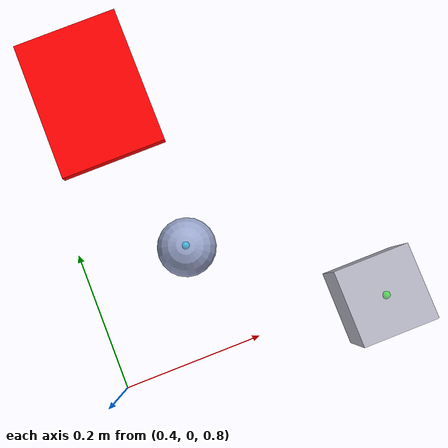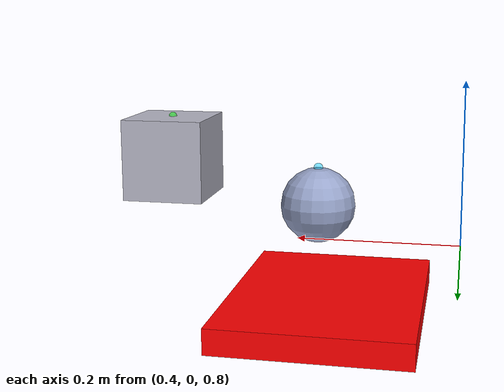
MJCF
<mujoco>

  <asset>
    <material name="metal_box_mat"
              rgba="0.72 0.72 0.78 1"
              specular="0.6"
              shininess="0.4"/>
    <material name="metal_sphere_mat"
              rgba="0.60 0.65 0.80 1"
              specular="0.7"
              shininess="0.5"/>
    <material name="target_zone_mat"
              rgba="1.0 0.0 0.0 1"
              specular="0.05"
              shininess="0.1"/>
  </asset>

  <worldbody>

    <!--
      ── Metal box (Phase 5, Task 5.1) ──────────────────────────────────
      freejoint → box can move under physics.
      DEFAULT pos overridden by randomize_scene() before first mj_step.
    -->
    <!-- Box default: directly under EM snap-pose position (X=0.76, Y=0) on table surface -->
    <body name="metal_box" pos="0.76 0 0.90">
      <freejoint name="box_freejoint"/>

      <geom name="box_geom"
            type="box"
            size="0.05 0.05 0.05"
            mass="0.5"
            material="metal_box_mat"
            friction="0.8 0.005 0.0001"
            condim="6"
            contype="4" conaffinity="6"/>

      <site name="box_top_site"
            pos="0 0 0.05"
            size="0.005"
            rgba="0 1 0 0.5"/>
    </body><!-- metal_box -->

    <body name="metal_sphere" pos="0.55 0.15 0.88">
      <freejoint name="sphere_freejoint"/>

      <geom name="sphere_geom"
            type="sphere"
            size="0.04"
            mass="0.3"
            material="metal_sphere_mat"
            friction="0.8 0.005 0.0001"
            condim="6"
            contype="4" conaffinity="6"/>

      <!-- Reference site at top of sphere (body local +Z). -->
      <site name="sphere_top_site"
            pos="0 0 0.04"
            size="0.005"
            rgba="0 0.8 1 0.5"/>
    </body><!-- metal_sphere -->

    <!-- Target zone: far side of table, arm must rotate A1 ~90° to reach it -->
    <body name="target_zone" pos="0.5 0.4 0.86">
      <geom name="target_geom"
            type="box"
            size="0.075 0.1 0.01"
            material="target_zone_mat"
            condim="3"
            contype="2" conaffinity="3"/>

      <!-- Site for touch sensor — at the top face of the target pad -->
      <site name="target_touch_site"
            pos="0 0 0.01"
            size="0.005"
            rgba="1 1 0 0"/>
    </body><!-- target_zone -->

  </worldbody>

  <!--
    Touch sensor on the target zone (Phase 5, Task 5.6).
    Outputs summed normal contact force on target_touch_site body.
  -->
  <sensor>
    <touch name="target_touch_sensor" site="target_touch_site"/>
  </sensor>

</mujoco>
